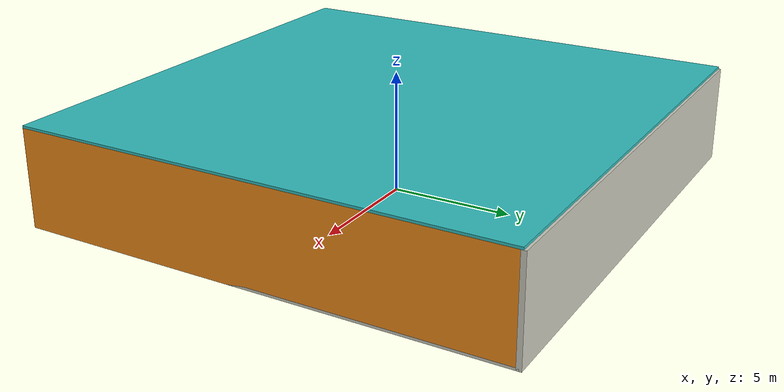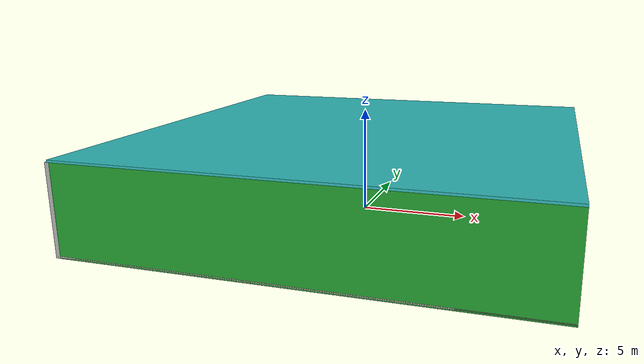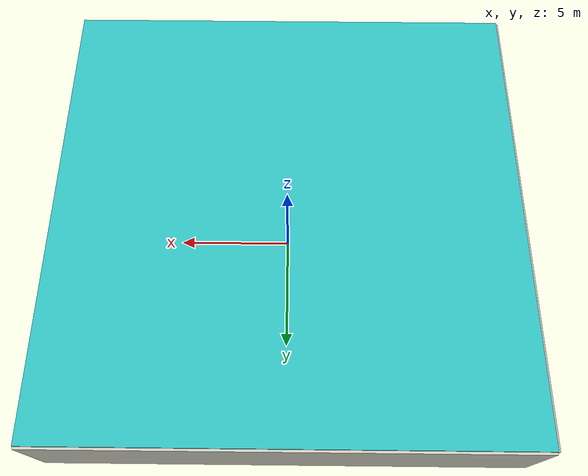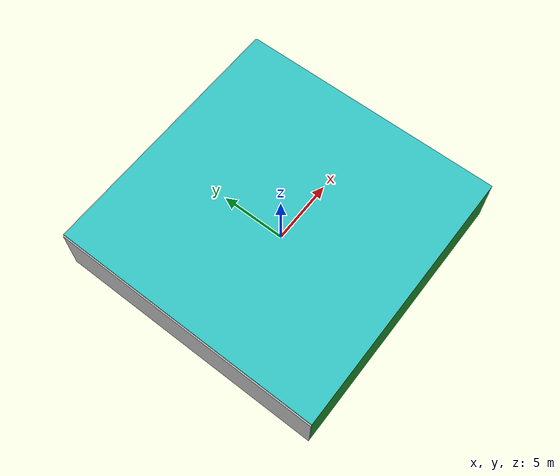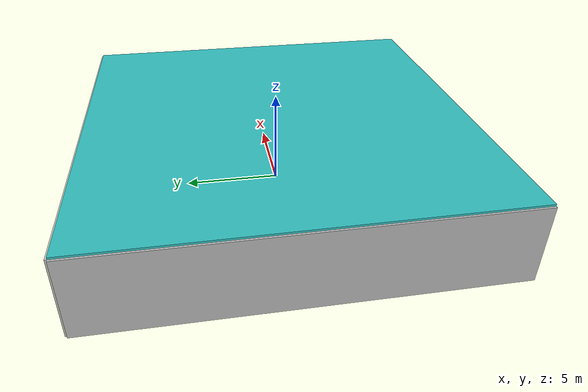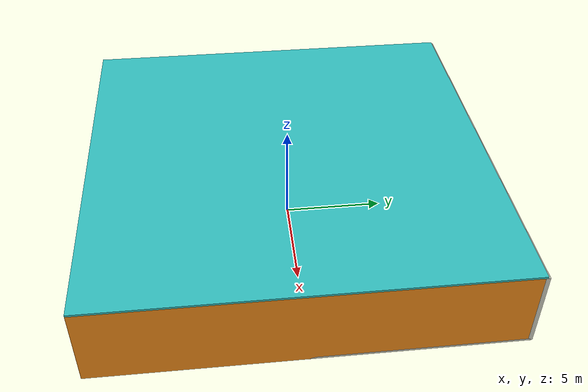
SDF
<sdf version="1.4">
 <world name="default">
  <physics type="ode">
   <max_step_size>0.001</max_step_size>
   <real_time_factor>1</real_time_factor>
   <real_time_update_rate>1000</real_time_update_rate>
   <gravity>0 0 -9.8</gravity>
  </physics>
  <scene><ambient>0.4 0.4 0.4 1</ambient><background>0.7 0.7 0.7 1</background><shadows>1</shadows></scene>
  <model name="Surrounding">
   <static>1</static>
   <link name="Ceiling">
    <collision name="Ceiling_Collision"><geometry><box><size>20 20 0.1</size></box></geometry></collision>
    <visual name="Ceiling_Visual">
     <geometry><box><size>20 20 0.1</size></box></geometry>
     <material>
      <script>
       <uri>file://media/materials/scripts/gazebo.material</uri>
       <name>Gazebo/TurquoiseGlowOutline</name>
      </script>
     </material>
    </visual>
    <pose>0 0 4.05 0 0 0</pose>
   </link>
   <link name="Wall_South">
    <collision name="Wall_South_Collision">
     <geometry><box><size>20 0 4</size></box></geometry>
     <pose>0 0 2 0 -0 0</pose>
    </collision>
    <visual name="Wall_South_Visual">
     <pose>0 0 2 0 -0 0</pose>
     <geometry><box><size>20 0 4</size></box></geometry>
     <material>
      <script><uri>file://media/materials/scripts/gazebo.material</uri><name>Gazebo/Green</name></script>
     </material>
    </visual>
    <velocity_decay><linear>0</linear><angular>0</angular></velocity_decay>
    <pose>0 -10 0 0 -0 0</pose>
   </link>
   <link name="Wall_East">
    <collision name="Wall_21_Collision">
     <geometry><box><size>20 0 4</size></box></geometry>
     <pose>0 0 2 0 -0 0</pose>
    </collision>
    <visual name="Wall_21_Visual">
     <pose>0 0 2 0 -0 0</pose>
     <geometry><box><size>20 0 4</size></box></geometry>
     <material>
      <script><uri>file://media/materials/scripts/gazebo.material</uri><name>Gazebo/Orange</name></script>
     </material>
    </visual>
    <velocity_decay><linear>0</linear><angular>0</angular></velocity_decay>
    <pose>10 0 0 0 -0 1.5708</pose>
   </link>
   <link name="Wall_North">
    <collision name="Wall_22_Collision">
     <geometry><box><size>20 0.2 4</size></box></geometry>
     <pose>0 0 2 0 -0 0</pose>
    </collision>
    <visual name="Wall_22_Visual">
     <pose>0 0 2 0 -0 0</pose>
     <geometry><box><size>20 0.2 4</size></box></geometry>
     <material>
      <script><uri>file://media/materials/scripts/gazebo.material</uri><name>Gazebo/PaintedWall</name></script>
     </material>
    </visual>
    <velocity_decay><linear>0</linear><angular>0</angular></velocity_decay>
    <pose>0 10 0 0 -0 0</pose>
   </link>
   <link name="Wall_West">
    <collision name="Wall_23_Collision">
     <geometry><box><size>20 0.2 4</size></box></geometry>
     <pose>0 0 2 0 -0 0</pose>
    </collision>
    <visual name="Wall_23_Visual">
     <pose>0 0 2 0 -0 0</pose>
     <geometry><box><size>20 0.2 4</size></box></geometry>
     <material>
      <script><uri>file://media/materials/scripts/gazebo.material</uri><name>Gazebo/LightOn</name></script>
     </material>
    </visual>
    <velocity_decay><linear>0</linear><angular>0</angular></velocity_decay>
    <pose>-10 0 0 0 0 -1.5708</pose>
   </link>
   <link name="Ground_link">
    <collision name="collision">
     <pose>0 0 .05 0 -0 0</pose>
     <geometry><box><size>20 20 0.1</size></box></geometry>
    </collision>
    <visual name="visual">
     <pose>0 0 .05 0 -0 0</pose>
     <geometry><box><size>20 20 0.1</size></box></geometry>
     <material>
      <script><uri>file://media/materials/scripts/gazebo.material</uri><name>Gazebo/PaintedWall</name></script>
     </material>
    </visual>
   </link>
   <static>1</static>
  </model>
  <spherical_coordinates>
   <surface_model>EARTH_WGS84</surface_model>
   <latitude_deg>0</latitude_deg>
   <longitude_deg>0</longitude_deg>
   <elevation>0</elevation>
   <heading_deg>0</heading_deg>
  </spherical_coordinates>
  <light name="lightball_0" type="diffuse">
   <diffuse>0.8 0.8 0.8 1</diffuse>
   <specular>0.2 0.2 0.2 1</specular>
   <attenuation>
    <range>100</range>
    <constant>0.7</constant>
    <linear>0.01</linear>
    <quadratic>0.001</quadratic>
   </attenuation>
   <direction>-0.5 0.1 -0.9</direction>
   <pose>7.01619244485 5.16910571539 3.18820628914 0 0 0</pose>
  </light>
  <light name="lightball_1" type="diffuse">
   <diffuse>0.8 0.8 0.8 1</diffuse>
   <specular>0.2 0.2 0.2 1</specular>
   <attenuation>
    <range>100</range>
    <constant>0.7</constant>
    <linear>0.01</linear>
    <quadratic>0.001</quadratic>
   </attenuation>
   <direction>-0.5 0.1 -0.9</direction>
   <pose>-2.84759169411 5.26392620079 3.73901030748 0 0 0</pose>
  </light>
  <light name="lightball_2" type="diffuse">
   <diffuse>0.8 0.8 0.8 1</diffuse>
   <specular>0.2 0.2 0.2 1</specular>
   <attenuation>
    <range>100</range>
    <constant>0.7</constant>
    <linear>0.01</linear>
    <quadratic>0.001</quadratic>
   </attenuation>
   <direction>-0.5 0.1 -0.9</direction>
   <pose>0.053755734666 -2.85314644198 0.987875877544 0 0 0</pose>
  </light>
  <light name="lightball_3" type="diffuse">
   <diffuse>0.8 0.8 0.8 1</diffuse>
   <specular>0.2 0.2 0.2 1</specular>
   <attenuation>
    <range>100</range>
    <constant>0.7</constant>
    <linear>0.01</linear>
    <quadratic>0.001</quadratic>
   </attenuation>
   <direction>-0.5 0.1 -0.9</direction>
   <pose>-7.68132489005 3.31480506262 3.44889097178 0 0 0</pose>
  </light>
  <light name="lightball_4" type="diffuse">
   <diffuse>0.8 0.8 0.8 1</diffuse>
   <specular>0.2 0.2 0.2 1</specular>
   <attenuation>
    <range>100</range>
    <constant>0.7</constant>
    <linear>0.01</linear>
    <quadratic>0.001</quadratic>
   </attenuation>
   <direction>-0.5 0.1 -0.9</direction>
   <pose>8.49948672381 4.02844827551 3.09036735173 0 0 0</pose>
  </light>
  <light name="lightball_5" type="diffuse">
   <diffuse>0.8 0.8 0.8 1</diffuse>
   <specular>0.2 0.2 0.2 1</specular>
   <attenuation>
    <range>100</range>
    <constant>0.7</constant>
    <linear>0.01</linear>
    <quadratic>0.001</quadratic>
   </attenuation>
   <direction>-0.5 0.1 -0.9</direction>
   <pose>7.48174095011 3.75949734294 2.54803900518 0 0 0</pose>
  </light>
  <light name="lightball_6" type="diffuse">
   <diffuse>0.8 0.8 0.8 1</diffuse>
   <specular>0.2 0.2 0.2 1</specular>
   <attenuation>
    <range>100</range>
    <constant>0.7</constant>
    <linear>0.01</linear>
    <quadratic>0.001</quadratic>
   </attenuation>
   <direction>-0.5 0.1 -0.9</direction>
   <pose>4.03270855733 7.35982963539 0.986233859279 0 0 0</pose>
  </light>
  <light name="lightball_7" type="diffuse">
   <diffuse>0.8 0.8 0.8 1</diffuse>
   <specular>0.2 0.2 0.2 1</specular>
   <attenuation>
    <range>100</range>
    <constant>0.7</constant>
    <linear>0.01</linear>
    <quadratic>0.001</quadratic>
   </attenuation>
   <direction>-0.5 0.1 -0.9</direction>
   <pose>-3.94755744666 8.98104919798 1.84416920272 0 0 0</pose>
  </light>
  <light name="lightball_8" type="diffuse">
   <diffuse>0.8 0.8 0.8 1</diffuse>
   <specular>0.2 0.2 0.2 1</specular>
   <attenuation>
    <range>100</range>
    <constant>0.7</constant>
    <linear>0.01</linear>
    <quadratic>0.001</quadratic>
   </attenuation>
   <direction>-0.5 0.1 -0.9</direction>
   <pose>-6.7963307933 -8.3114916603 2.40796897584 0 0 0</pose>
  </light>
  <light name="lightball_9" type="diffuse">
   <diffuse>0.8 0.8 0.8 1</diffuse>
   <specular>0.2 0.2 0.2 1</specular>
   <attenuation>
    <range>100</range>
    <constant>0.7</constant>
    <linear>0.01</linear>
    <quadratic>0.001</quadratic>
   </attenuation>
   <direction>-0.5 0.1 -0.9</direction>
   <pose>-0.442461896736 -2.13724440241 1.85729775531 0 0 0</pose>
  </light>
  <light name="lightball_10" type="diffuse">
   <diffuse>0.8 0.8 0.8 1</diffuse>
   <specular>0.2 0.2 0.2 1</specular>
   <attenuation>
    <range>100</range>
    <constant>0.7</constant>
    <linear>0.01</linear>
    <quadratic>0.001</quadratic>
   </attenuation>
   <direction>-0.5 0.1 -0.9</direction>
   <pose>-0.0309398299465 7.22669415978 1.69439012114 0 0 0</pose>
  </light>
  <light name="lightball_11" type="diffuse">
   <diffuse>0.8 0.8 0.8 1</diffuse>
   <specular>0.2 0.2 0.2 1</specular>
   <attenuation>
    <range>100</range>
    <constant>0.7</constant>
    <linear>0.01</linear>
    <quadratic>0.001</quadratic>
   </attenuation>
   <direction>-0.5 0.1 -0.9</direction>
   <pose>7.82428326758 -1.90352051212 3.22233966684 0 0 0</pose>
  </light>
  <light name="lightball_12" type="diffuse">
   <diffuse>0.8 0.8 0.8 1</diffuse>
   <specular>0.2 0.2 0.2 1</specular>
   <attenuation>
    <range>100</range>
    <constant>0.7</constant>
    <linear>0.01</linear>
    <quadratic>0.001</quadratic>
   </attenuation>
   <direction>-0.5 0.1 -0.9</direction>
   <pose>-9.57989222923 7.16172361786 1.58403250425 0 0 0</pose>
  </light>
  <include><uri>model://table</uri><pose>-5.17934115289 -1.1723750666 0 0 0 2.64214028596</pose></include>
  <include>
   <uri>model://textured_shapes</uri>
   <pose>-1.35110596233 -8.10136263099 0 0 0 1.72240463363</pose>
  </include>
  <include><uri>model://cabinet</uri><pose>-2.2460487176 6.35998609862 0 0 0 2.46089864275</pose></include>
  <include><uri>model://table</uri><pose>0.527841477712 -5.03401425563 0 0 0 1.77258263122</pose></include>
  <include>
   <uri>model://textured_shapes</uri>
   <pose>2.6829314443 -2.38976511098 0 0 0 0.060281858466</pose>
  </include>
  <include><uri>model://cabinet</uri><pose>0.832772587731 5.08737643368 0 0 0 2.24367264535</pose></include>
 </world>
</sdf>

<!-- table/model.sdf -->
<sdf version="1.5">
  <model name="table">
    <static>true</static>
    <link name="link">
      <collision name="surface">
        <pose>0 0 1.0 0 0 0</pose>
        <geometry>
          <box>
            <size>1.5 0.8 0.03</size>
          </box>
        </geometry>
        <surface>
          <friction>
            <ode>
              <mu>0.6</mu>
              <mu2>0.6</mu2>
            </ode>
          </friction>
        </surface>
      </collision>
      <visual name="visual1">
        <pose>0 0 1.0 0 0 0</pose>
        <geometry>
          <box>
            <size>1.5 0.8 0.03</size>
          </box>
        </geometry>
        <material>
          <script>
            <uri>model://media/materials/scripts/gazebo.material</uri>
            <name>Gazebo/Wood</name>
          </script>
        </material>
      </visual>
      <collision name="front_left_leg">
        <pose>0.68 0.38 0.5 0 0 0</pose>
        <geometry>
          <cylinder>
            <radius>0.02</radius>
            <length>1.0</length>
          </cylinder>
        </geometry>
      </collision>
      <visual name="front_left_leg">
        <pose>0.68 0.38 0.5 0 0 0</pose>
        <geometry>
          <cylinder>
            <radius>0.02</radius>
            <length>1.0</length>
          </cylinder>
        </geometry>
        <material>
          <script>
            <uri>model://media/materials/scripts/gazebo.material</uri>
            <name>Gazebo/Grey</name>
          </script>
        </material>
      </visual>
      <collision name="front_right_leg">
        <pose>0.68 -0.38 0.5 0 0 0</pose>
        <geometry>
          <cylinder>
            <radius>0.02</radius>
            <length>1.0</length>
          </cylinder>
        </geometry>
      </collision>
      <visual name="front_right_leg">
        <pose>0.68 -0.38 0.5 0 0 0</pose>
        <geometry>
          <cylinder>
            <radius>0.02</radius>
            <length>1.0</length>
          </cylinder>
        </geometry>
        <material>
          <script>
            <uri>model://media/materials/scripts/gazebo.material</uri>
            <name>Gazebo/Grey</name>
          </script>
        </material>
      </visual>
      <collision name="back_right_leg">
        <pose>-0.68 -0.38 0.5 0 0 0</pose>
        <geometry>
          <cylinder>
            <radius>0.02</radius>
            <length>1.0</length>
          </cylinder>
        </geometry>
      </collision>
      <visual name="back_right_leg">
        <pose>-0.68 -0.38 0.5 0 0 0</pose>
        <geometry>
          <cylinder>
            <radius>0.02</radius>
            <length>1.0</length>
          </cylinder>
        </geometry>
        <material>
          <script>
            <uri>model://media/materials/scripts/gazebo.material</uri>
            <name>Gazebo/Grey</name>
          </script>
        </material>
      </visual>
      <collision name="back_left_leg">
        <pose>-0.68 0.38 0.5 0 0 0</pose>
        <geometry>
          <cylinder>
            <radius>0.02</radius>
            <length>1.0</length>
          </cylinder>
        </geometry>
      </collision>
      <visual name="back_left_leg">
        <pose>-0.68 0.38 0.5 0 0 0</pose>
        <geometry>
          <cylinder>
            <radius>0.02</radius>
            <length>1.0</length>
          </cylinder>
        </geometry>
        <material>
          <script>
            <uri>model://media/materials/scripts/gazebo.material</uri>
            <name>Gazebo/Grey</name>
          </script>
        </material>
      </visual>
    </link>
  </model>
</sdf>

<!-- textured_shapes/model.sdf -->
<sdf version="1.6">
  <model name="textured_shapes">
    <pose>0 0 0.5 0 0 0</pose>
    <link name="box">
      <pose>0 -1.5 0 0 0 0</pose>
      <collision name="collision">
        <geometry>
          <box>
            <size>1 1 1</size>
          </box>
        </geometry>
      </collision>
      <visual name="visual">
        <geometry>
          <box>
            <size>1 1 1</size>
          </box>
        </geometry>
        <material>
          <script>
            <uri>model://../model_source/models/textured_shapes/materials/scripts</uri>
            <uri>model://../model_source/models/textured_shapes/materials/textures</uri>
            <name>TexturedShape/Squares</name>
          </script>
        </material>
      </visual>
    </link>
    <link name="sphere">
      <collision name="collision">
        <geometry>
          <sphere>
            <radius>0.5</radius>
          </sphere>
        </geometry>
      </collision>
      <visual name="visual">
        <geometry>
          <sphere>
            <radius>0.5</radius>
          </sphere>
        </geometry>
        <material>
          <script>
            <uri>model://../model_source/models/textured_shapes/materials/scripts</uri>
            <uri>model://../model_source/models/textured_shapes/materials/textures</uri>
            <name>TexturedShape/Squares</name>
          </script>
        </material>
      </visual>
    </link>
    <link name="cylinder">
      <pose>0 1.5 0 0 0 0</pose>
      <collision name="collision">
        <geometry>
          <cylinder>
            <radius>0.5</radius>
            <length>1</length>
          </cylinder>
        </geometry>
      </collision>
      <visual name="visual">
        <geometry>
          <cylinder>
            <radius>0.5</radius>
            <length>1</length>
          </cylinder>
        </geometry>
        <material>
          <script>
            <uri>model://../model_source/models/textured_shapes/materials/scripts</uri>
            <uri>model://../model_source/models/textured_shapes/materials/textures</uri>
            <name>TexturedShape/Squares</name>
          </script>
        </material>
      </visual>
    </link>
  </model>
</sdf>

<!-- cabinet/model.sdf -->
<sdf version="1.5">
  <model name="cabinet">
    <static>true</static>
    <link name="cabinet_bottom_plate">
      <inertial>
        <pose>0 0 -1 0 0 0</pose>
        <inertia>
          <ixx>2.050000</ixx>
          <ixy>0</ixy>
          <ixz>0</ixz>
          <iyy>2.050000</iyy>
          <iyz>0</iyz>
          <izz>2.050000</izz>
        </inertia>
        <mass>25.000000</mass>
      </inertial>
      <collision name="cabinet_bottom_plate_geom">
        <pose>0 0 0.010000 0 0 0</pose>
        <geometry>
          <box>
            <size>0.450000 0.450000 0.020000</size>
          </box>
        </geometry>
      </collision>
      <visual name="cabinet_bottom_plate_geom_visual">
        <pose>0 0 0.010000 0 0 0</pose>
        <geometry>
          <box>
            <size>0.450000 0.450000 0.020000</size>
          </box>
        </geometry>
        <material>
          <script>
            <uri>model://media/materials/scripts/gazebo.material</uri>
            <name>Gazebo/Wood</name>
          </script>
        </material>
      </visual>
      <collision name="cabinet_bottom_plate_geom_cabinet_back_plate">
        <pose>0.235000 0 0.510000 0 0 0</pose>
        <geometry>
          <box>
            <size>0.020000 0.450000 1.020000</size>
          </box>
        </geometry>
      </collision>
      <visual name="cabinet_bottom_plate_geom_cabinet_back_plate_visual">
        <pose>0.235000 0 0.510000 0 0 0</pose>
        <geometry>
          <box>
            <size>0.020000 0.450000 1.020000</size>
          </box>
        </geometry>
        <material>
          <script>
            <uri>model://media/materials/scripts/gazebo.material</uri>
            <name>Gazebo/Wood</name>
          </script>
        </material>
      </visual>
      <collision name="cabinet_bottom_plate_geom_cabinet_left_plate">
        <pose>0 0.235000 0.510000 0 0 0</pose>
        <geometry>
          <box>
            <size>0.450000 0.020000 1.020000</size>
          </box>
        </geometry>
      </collision>
      <visual name="cabinet_bottom_plate_geom_cabinet_left_plate_visual">
        <pose>0 0.235000 0.510000 0 0 0</pose>
        <geometry>
          <box>
            <size>0.450000 0.020000 1.020000</size>
          </box>
        </geometry>
        <material>
          <script>
            <uri>model://media/materials/scripts/gazebo.material</uri>
            <name>Gazebo/Wood</name>
          </script>
        </material>
      </visual>
      <collision name="cabinet_bottom_plate_geom_cabinet_middle_plate">
        <pose>0 0 0.510000 0 0 0</pose>
        <geometry>
          <box>
            <size>0.450000 0.450000 0.020000</size>
          </box>
        </geometry>
      </collision>
      <visual name="cabinet_bottom_plate_geom_cabinet_middle_plate_visual">
        <pose>0 0 0.510000 0 0 0</pose>
        <geometry>
          <box>
            <size>0.450000 0.450000 0.020000</size>
          </box>
        </geometry>
        <material>
          <script>
            <uri>model://media/materials/scripts/gazebo.material</uri>
            <name>Gazebo/Wood</name>
          </script>
        </material>
      </visual>
      <collision name="cabinet_bottom_plate_geom_cabinet_right_plate">
        <pose>0 -0.235000 0.510000 0 0 0</pose>
        <geometry>
          <box>
            <size>0.450000 0.020000 1.020000</size>
          </box>
        </geometry>
      </collision>
      <visual name="cabinet_bottom_plate_geom_cabinet_right_plate_visual">
        <pose>0 -0.235000 0.510000 0 0 0</pose>
        <geometry>
          <box>
            <size>0.450000 0.020000 1.020000</size>
          </box>
        </geometry>
        <material>
          <script>
            <uri>model://media/materials/scripts/gazebo.material</uri>
            <name>Gazebo/Wood</name>
          </script>
        </material>
      </visual>
      <collision name="cabinet_bottom_plate_geom_cabinet_top_plate">
        <pose>0 0 1.010000 0 0 0</pose>
        <geometry>
          <box>
            <size>0.450000 0.450000 0.020000</size>
          </box>
        </geometry>
      </collision>
      <visual name="cabinet_bottom_plate_geom_cabinet_top_plate_visual">
        <pose>0 0 1.010000 0 0 0</pose>
        <geometry>
          <box>
            <size>0.450000 0.450000 0.020000</size>
          </box>
        </geometry>
        <material>
          <script>
            <uri>model://media/materials/scripts/gazebo.material</uri>
            <name>Gazebo/Wood</name>
          </script>
        </material>
      </visual>
    </link>
  </model>
</sdf>
